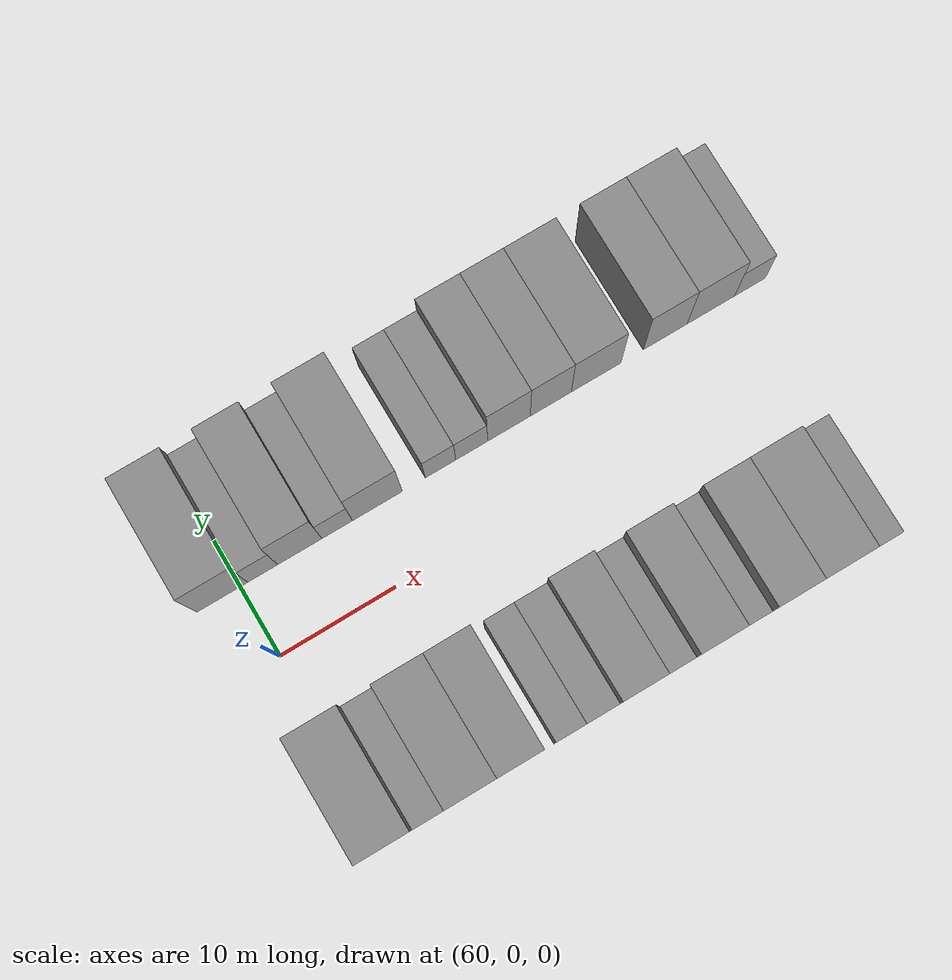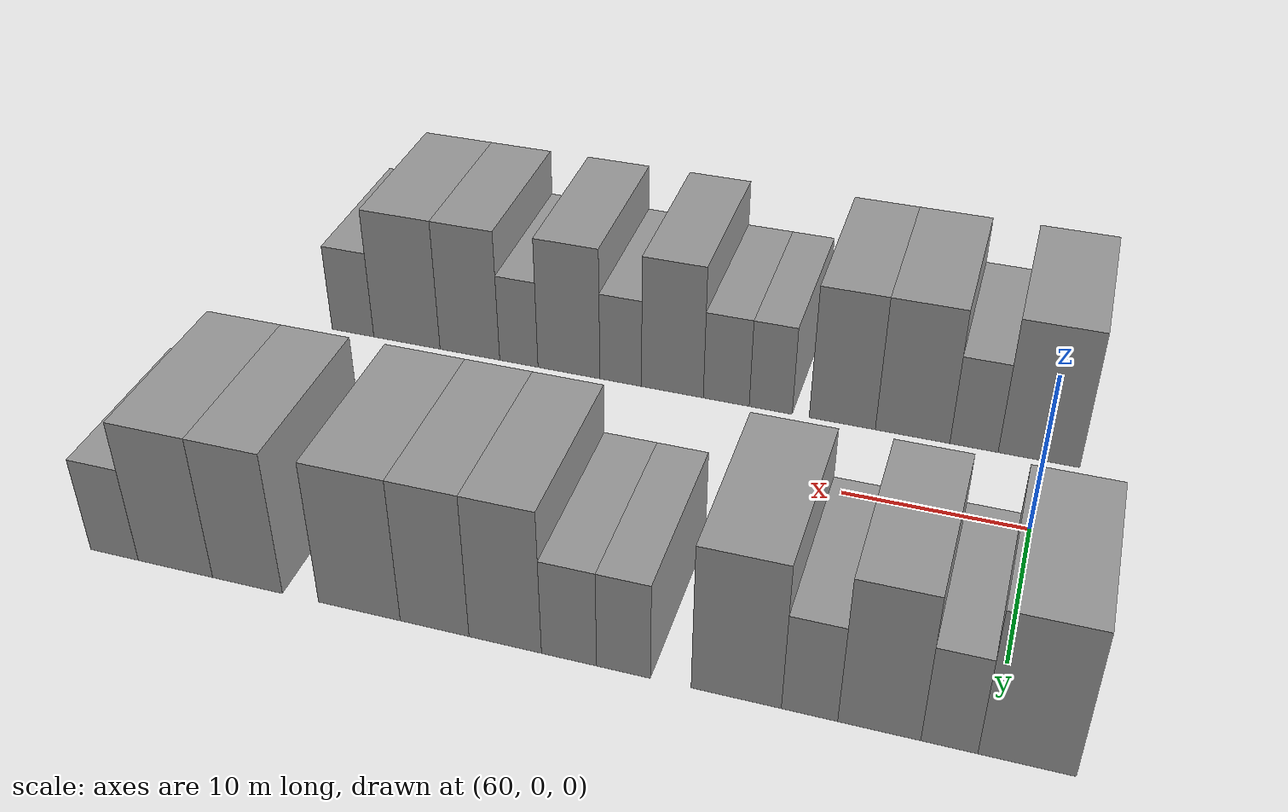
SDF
<sdf version="1.6">
 <world name="default">
  <model name="building_13">
   <static>1</static>
   <pose>58.4918 11.0000 0 0.000000 0.000000 1.570796</pose>
   <link name="link">
    <pose>0 0 4.50 0 0 0</pose>
    <collision name="collision"><geometry><box><size>10.0000 4.3497 9.0000</size></box></geometry></collision>
    <visual name="visual">
     <cast_shadows>0</cast_shadows>
     <geometry><box><size>10.0000 4.3497 9.0000</size></box></geometry>
     <material>
      <script>
       <uri>model://grey_wall/materials/scripts</uri>
       <uri>model://grey_wall/materials/textures</uri>
       <name>vrc/grey_wall</name>
      </script>
     </material>
    </visual>
   </link>
  </model>
  <model name="building_14">
   <static>1</static>
   <pose>61.9541 11.0000 0 0.000000 0.000000 1.570796</pose>
   <link name="link">
    <pose>0 0 3.00 0 0 0</pose>
    <collision name="collision"><geometry><box><size>10.0000 2.5749 6.0000</size></box></geometry></collision>
    <visual name="visual">
     <cast_shadows>0</cast_shadows>
     <geometry><box><size>10.0000 2.5749 6.0000</size></box></geometry>
     <material>
      <script>
       <uri>model://grey_wall/materials/scripts</uri>
       <uri>model://grey_wall/materials/textures</uri>
       <name>vrc/grey_wall</name>
      </script>
     </material>
    </visual>
   </link>
  </model>
  <model name="building_15">
   <static>1</static>
   <pose>65.1549 11.0000 0 0.000000 0.000000 1.570796</pose>
   <link name="link">
    <pose>0 0 4.50 0 0 0</pose>
    <collision name="collision"><geometry><box><size>10.0000 3.8267 9.0000</size></box></geometry></collision>
    <visual name="visual">
     <cast_shadows>0</cast_shadows>
     <geometry><box><size>10.0000 3.8267 9.0000</size></box></geometry>
     <material>
      <script>
       <uri>model://grey_wall/materials/scripts</uri>
       <uri>model://grey_wall/materials/textures</uri>
       <name>vrc/grey_wall</name>
      </script>
     </material>
    </visual>
   </link>
  </model>
  <model name="building_16">
   <static>1</static>
   <pose>68.3939 11.0000 0 0.000000 0.000000 1.570796</pose>
   <link name="link">
    <pose>0 0 3.00 0 0 0</pose>
    <collision name="collision"><geometry><box><size>10.0000 2.6512 6.0000</size></box></geometry></collision>
    <visual name="visual">
     <cast_shadows>0</cast_shadows>
     <geometry><box><size>10.0000 2.6512 6.0000</size></box></geometry>
     <material>
      <script>
       <uri>model://grey_wall/materials/scripts</uri>
       <uri>model://grey_wall/materials/textures</uri>
       <name>vrc/grey_wall</name>
      </script>
     </material>
    </visual>
   </link>
  </model>
  <model name="building_17">
   <static>1</static>
   <pose>71.8897 11.0000 0 0.000000 0.000000 1.570796</pose>
   <link name="link">
    <pose>0 0 4.50 0 0 0</pose>
    <collision name="collision"><geometry><box><size>10.0000 4.3404 9.0000</size></box></geometry></collision>
    <visual name="visual">
     <cast_shadows>0</cast_shadows>
     <geometry><box><size>10.0000 4.3404 9.0000</size></box></geometry>
     <material>
      <script>
       <uri>model://grey_wall/materials/scripts</uri>
       <uri>model://grey_wall/materials/textures</uri>
       <name>vrc/grey_wall</name>
      </script>
     </material>
    </visual>
   </link>
  </model>
  <model name="building_18">
   <static>1</static>
   <pose>77.3994 11.0000 0 0.000000 0.000000 1.570796</pose>
   <link name="link">
    <pose>0 0 3.00 0 0 0</pose>
    <collision name="collision"><geometry><box><size>10.0000 2.6791 6.0000</size></box></geometry></collision>
    <visual name="visual">
     <cast_shadows>0</cast_shadows>
     <geometry><box><size>10.0000 2.6791 6.0000</size></box></geometry>
     <material>
      <script>
       <uri>model://grey_wall/materials/scripts</uri>
       <uri>model://grey_wall/materials/textures</uri>
       <name>vrc/grey_wall</name>
      </script>
     </material>
    </visual>
   </link>
  </model>
  <model name="building_19">
   <static>1</static>
   <pose>80.1359 11.0000 0 0.000000 0.000000 1.570796</pose>
   <link name="link">
    <pose>0 0 3.00 0 0 0</pose>
    <collision name="collision"><geometry><box><size>10.0000 2.7939 6.0000</size></box></geometry></collision>
    <visual name="visual">
     <cast_shadows>0</cast_shadows>
     <geometry><box><size>10.0000 2.7939 6.0000</size></box></geometry>
     <material>
      <script>
       <uri>model://grey_wall/materials/scripts</uri>
       <uri>model://grey_wall/materials/textures</uri>
       <name>vrc/grey_wall</name>
      </script>
     </material>
    </visual>
   </link>
  </model>
  <model name="building_20">
   <static>1</static>
   <pose>83.4077 11.0000 0 0.000000 0.000000 1.570796</pose>
   <link name="link">
    <pose>0 0 4.50 0 0 0</pose>
    <collision name="collision"><geometry><box><size>10.0000 3.7497 9.0000</size></box></geometry></collision>
    <visual name="visual">
     <cast_shadows>0</cast_shadows>
     <geometry><box><size>10.0000 3.7497 9.0000</size></box></geometry>
     <material>
      <script>
       <uri>model://grey_wall/materials/scripts</uri>
       <uri>model://grey_wall/materials/textures</uri>
       <name>vrc/grey_wall</name>
      </script>
     </material>
    </visual>
   </link>
  </model>
  <model name="building_21">
   <static>1</static>
   <pose>87.1007 11.0000 0 0.000000 0.000000 1.570796</pose>
   <link name="link">
    <pose>0 0 4.50 0 0 0</pose>
    <collision name="collision"><geometry><box><size>10.0000 3.6362 9.0000</size></box></geometry></collision>
    <visual name="visual">
     <cast_shadows>0</cast_shadows>
     <geometry><box><size>10.0000 3.6362 9.0000</size></box></geometry>
     <material>
      <script>
       <uri>model://grey_wall/materials/scripts</uri>
       <uri>model://grey_wall/materials/textures</uri>
       <name>vrc/grey_wall</name>
      </script>
     </material>
    </visual>
   </link>
  </model>
  <model name="building_22">
   <static>1</static>
   <pose>91.1329 11.0000 0 0.000000 0.000000 1.570796</pose>
   <link name="link">
    <pose>0 0 4.50 0 0 0</pose>
    <collision name="collision"><geometry><box><size>10.0000 4.4283 9.0000</size></box></geometry></collision>
    <visual name="visual">
     <cast_shadows>0</cast_shadows>
     <geometry><box><size>10.0000 4.4283 9.0000</size></box></geometry>
     <material>
      <script>
       <uri>model://grey_wall/materials/scripts</uri>
       <uri>model://grey_wall/materials/textures</uri>
       <name>vrc/grey_wall</name>
      </script>
     </material>
    </visual>
   </link>
  </model>
  <model name="building_23">
   <static>1</static>
   <pose>97.3107 11.0000 0 0.000000 0.000000 1.570796</pose>
   <link name="link">
    <pose>0 0 4.50 0 0 0</pose>
    <collision name="collision"><geometry><box><size>10.0000 3.9274 9.0000</size></box></geometry></collision>
    <visual name="visual">
     <cast_shadows>0</cast_shadows>
     <geometry><box><size>10.0000 3.9274 9.0000</size></box></geometry>
     <material>
      <script>
       <uri>model://grey_wall/materials/scripts</uri>
       <uri>model://grey_wall/materials/textures</uri>
       <name>vrc/grey_wall</name>
      </script>
     </material>
    </visual>
   </link>
  </model>
  <model name="building_24">
   <static>1</static>
   <pose>101.4170 11.0000 0 0.000000 0.000000 1.570796</pose>
   <link name="link">
    <pose>0 0 4.50 0 0 0</pose>
    <collision name="collision"><geometry><box><size>10.0000 4.2852 9.0000</size></box></geometry></collision>
    <visual name="visual">
     <cast_shadows>0</cast_shadows>
     <geometry><box><size>10.0000 4.2852 9.0000</size></box></geometry>
     <material>
      <script>
       <uri>model://grey_wall/materials/scripts</uri>
       <uri>model://grey_wall/materials/textures</uri>
       <name>vrc/grey_wall</name>
      </script>
     </material>
    </visual>
   </link>
  </model>
  <model name="building_25">
   <static>1</static>
   <pose>104.9561 11.0000 0 0.000000 0.000000 1.570796</pose>
   <link name="link">
    <pose>0 0 3.00 0 0 0</pose>
    <collision name="collision"><geometry><box><size>10.0000 2.7929 6.0000</size></box></geometry></collision>
    <visual name="visual">
     <cast_shadows>0</cast_shadows>
     <geometry><box><size>10.0000 2.7929 6.0000</size></box></geometry>
     <material>
      <script>
       <uri>model://grey_wall/materials/scripts</uri>
       <uri>model://grey_wall/materials/textures</uri>
       <name>vrc/grey_wall</name>
      </script>
     </material>
    </visual>
   </link>
  </model>
  <model name="building_63">
   <static>1</static>
   <pose>60.0976 -11.0000 0 0.000000 0.000000 1.570796</pose>
   <link name="link">
    <pose>0 0 4.50 0 0 0</pose>
    <collision name="collision"><geometry><box><size>10.0000 4.4673 9.0000</size></box></geometry></collision>
    <visual name="visual">
     <cast_shadows>0</cast_shadows>
     <geometry><box><size>10.0000 4.4673 9.0000</size></box></geometry>
     <material>
      <script>
       <uri>model://grey_wall/materials/scripts</uri>
       <uri>model://grey_wall/materials/textures</uri>
       <name>vrc/grey_wall</name>
      </script>
     </material>
    </visual>
   </link>
  </model>
  <model name="building_64">
   <static>1</static>
   <pose>63.6772 -11.0000 0 0.000000 0.000000 1.570796</pose>
   <link name="link">
    <pose>0 0 3.00 0 0 0</pose>
    <collision name="collision"><geometry><box><size>10.0000 2.6919 6.0000</size></box></geometry></collision>
    <visual name="visual">
     <cast_shadows>0</cast_shadows>
     <geometry><box><size>10.0000 2.6919 6.0000</size></box></geometry>
     <material>
      <script>
       <uri>model://grey_wall/materials/scripts</uri>
       <uri>model://grey_wall/materials/textures</uri>
       <name>vrc/grey_wall</name>
      </script>
     </material>
    </visual>
   </link>
  </model>
  <model name="building_65">
   <static>1</static>
   <pose>67.1402 -11.0000 0 0.000000 0.000000 1.570796</pose>
   <link name="link">
    <pose>0 0 4.50 0 0 0</pose>
    <collision name="collision"><geometry><box><size>10.0000 4.2341 9.0000</size></box></geometry></collision>
    <visual name="visual">
     <cast_shadows>0</cast_shadows>
     <geometry><box><size>10.0000 4.2341 9.0000</size></box></geometry>
     <material>
      <script>
       <uri>model://grey_wall/materials/scripts</uri>
       <uri>model://grey_wall/materials/textures</uri>
       <name>vrc/grey_wall</name>
      </script>
     </material>
    </visual>
   </link>
  </model>
  <model name="building_66">
   <static>1</static>
   <pose>71.1725 -11.0000 0 0.000000 0.000000 1.570796</pose>
   <link name="link">
    <pose>0 0 4.50 0 0 0</pose>
    <collision name="collision"><geometry><box><size>10.0000 3.8305 9.0000</size></box></geometry></collision>
    <visual name="visual">
     <cast_shadows>0</cast_shadows>
     <geometry><box><size>10.0000 3.8305 9.0000</size></box></geometry>
     <material>
      <script>
       <uri>model://grey_wall/materials/scripts</uri>
       <uri>model://grey_wall/materials/textures</uri>
       <name>vrc/grey_wall</name>
      </script>
     </material>
    </visual>
   </link>
  </model>
  <model name="building_67">
   <static>1</static>
   <pose>75.3624 -11.0000 0 0.000000 0.000000 1.570796</pose>
   <link name="link">
    <pose>0 0 3.00 0 0 0</pose>
    <collision name="collision"><geometry><box><size>10.0000 2.5492 6.0000</size></box></geometry></collision>
    <visual name="visual">
     <cast_shadows>0</cast_shadows>
     <geometry><box><size>10.0000 2.5492 6.0000</size></box></geometry>
     <material>
      <script>
       <uri>model://grey_wall/materials/scripts</uri>
       <uri>model://grey_wall/materials/textures</uri>
       <name>vrc/grey_wall</name>
      </script>
     </material>
    </visual>
   </link>
  </model>
  <model name="building_68">
   <static>1</static>
   <pose>78.0154 -11.0000 0 0.000000 0.000000 1.570796</pose>
   <link name="link">
    <pose>0 0 3.00 0 0 0</pose>
    <collision name="collision"><geometry><box><size>10.0000 2.7570 6.0000</size></box></geometry></collision>
    <visual name="visual">
     <cast_shadows>0</cast_shadows>
     <geometry><box><size>10.0000 2.7570 6.0000</size></box></geometry>
     <material>
      <script>
       <uri>model://grey_wall/materials/scripts</uri>
       <uri>model://grey_wall/materials/textures</uri>
       <name>vrc/grey_wall</name>
      </script>
     </material>
    </visual>
   </link>
  </model>
  <model name="building_69">
   <static>1</static>
   <pose>81.2817 -11.0000 0 0.000000 0.000000 1.570796</pose>
   <link name="link">
    <pose>0 0 4.50 0 0 0</pose>
    <collision name="collision"><geometry><box><size>10.0000 3.7755 9.0000</size></box></geometry></collision>
    <visual name="visual">
     <cast_shadows>0</cast_shadows>
     <geometry><box><size>10.0000 3.7755 9.0000</size></box></geometry>
     <material>
      <script>
       <uri>model://grey_wall/materials/scripts</uri>
       <uri>model://grey_wall/materials/textures</uri>
       <name>vrc/grey_wall</name>
      </script>
     </material>
    </visual>
   </link>
  </model>
  <model name="building_70">
   <static>1</static>
   <pose>84.4568 -11.0000 0 0.000000 0.000000 1.570796</pose>
   <link name="link">
    <pose>0 0 3.00 0 0 0</pose>
    <collision name="collision"><geometry><box><size>10.0000 2.5747 6.0000</size></box></geometry></collision>
    <visual name="visual">
     <cast_shadows>0</cast_shadows>
     <geometry><box><size>10.0000 2.5747 6.0000</size></box></geometry>
     <material>
      <script>
       <uri>model://grey_wall/materials/scripts</uri>
       <uri>model://grey_wall/materials/textures</uri>
       <name>vrc/grey_wall</name>
      </script>
     </material>
    </visual>
   </link>
  </model>
  <model name="building_71">
   <static>1</static>
   <pose>87.6993 -11.0000 0 0.000000 0.000000 1.570796</pose>
   <link name="link">
    <pose>0 0 4.50 0 0 0</pose>
    <collision name="collision"><geometry><box><size>10.0000 3.9104 9.0000</size></box></geometry></collision>
    <visual name="visual">
     <cast_shadows>0</cast_shadows>
     <geometry><box><size>10.0000 3.9104 9.0000</size></box></geometry>
     <material>
      <script>
       <uri>model://grey_wall/materials/scripts</uri>
       <uri>model://grey_wall/materials/textures</uri>
       <name>vrc/grey_wall</name>
      </script>
     </material>
    </visual>
   </link>
  </model>
  <model name="building_72">
   <static>1</static>
   <pose>90.8811 -11.0000 0 0.000000 0.000000 1.570796</pose>
   <link name="link">
    <pose>0 0 3.00 0 0 0</pose>
    <collision name="collision"><geometry><box><size>10.0000 2.4532 6.0000</size></box></geometry></collision>
    <visual name="visual">
     <cast_shadows>0</cast_shadows>
     <geometry><box><size>10.0000 2.4532 6.0000</size></box></geometry>
     <material>
      <script>
       <uri>model://grey_wall/materials/scripts</uri>
       <uri>model://grey_wall/materials/textures</uri>
       <name>vrc/grey_wall</name>
      </script>
     </material>
    </visual>
   </link>
  </model>
  <model name="building_73">
   <static>1</static>
   <pose>94.0493 -11.0000 0 0.000000 0.000000 1.570796</pose>
   <link name="link">
    <pose>0 0 4.50 0 0 0</pose>
    <collision name="collision"><geometry><box><size>10.0000 3.8832 9.0000</size></box></geometry></collision>
    <visual name="visual">
     <cast_shadows>0</cast_shadows>
     <geometry><box><size>10.0000 3.8832 9.0000</size></box></geometry>
     <material>
      <script>
       <uri>model://grey_wall/materials/scripts</uri>
       <uri>model://grey_wall/materials/textures</uri>
       <name>vrc/grey_wall</name>
      </script>
     </material>
    </visual>
   </link>
  </model>
  <model name="building_74">
   <static>1</static>
   <pose>98.1915 -11.0000 0 0.000000 0.000000 1.570796</pose>
   <link name="link">
    <pose>0 0 4.50 0 0 0</pose>
    <collision name="collision"><geometry><box><size>10.0000 4.4013 9.0000</size></box></geometry></collision>
    <visual name="visual">
     <cast_shadows>0</cast_shadows>
     <geometry><box><size>10.0000 4.4013 9.0000</size></box></geometry>
     <material>
      <script>
       <uri>model://grey_wall/materials/scripts</uri>
       <uri>model://grey_wall/materials/textures</uri>
       <name>vrc/grey_wall</name>
      </script>
     </material>
    </visual>
   </link>
  </model>
  <model name="building_75">
   <static>1</static>
   <pose>101.7963 -11.0000 0 0.000000 0.000000 1.570796</pose>
   <link name="link">
    <pose>0 0 3.00 0 0 0</pose>
    <collision name="collision"><geometry><box><size>10.0000 2.8082 6.0000</size></box></geometry></collision>
    <visual name="visual">
     <cast_shadows>0</cast_shadows>
     <geometry><box><size>10.0000 2.8082 6.0000</size></box></geometry>
     <material>
      <script>
       <uri>model://grey_wall/materials/scripts</uri>
       <uri>model://grey_wall/materials/textures</uri>
       <name>vrc/grey_wall</name>
      </script>
     </material>
    </visual>
   </link>
  </model>
 </world>
</sdf>
